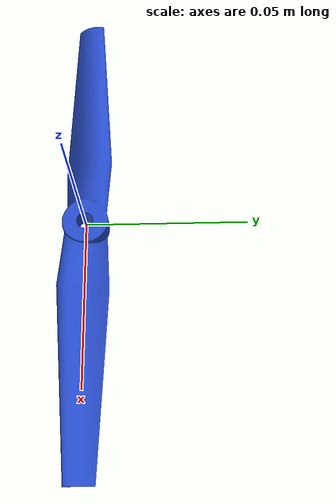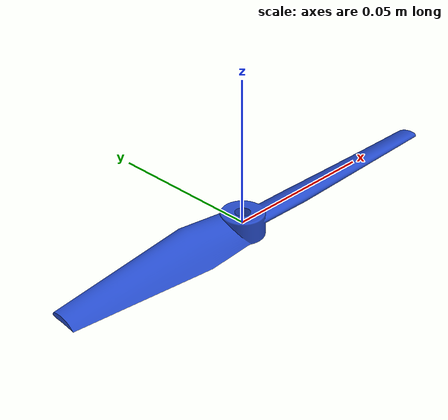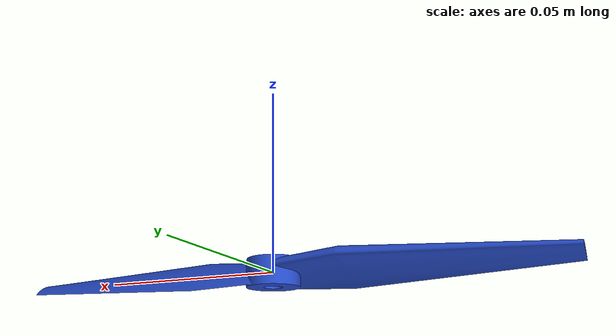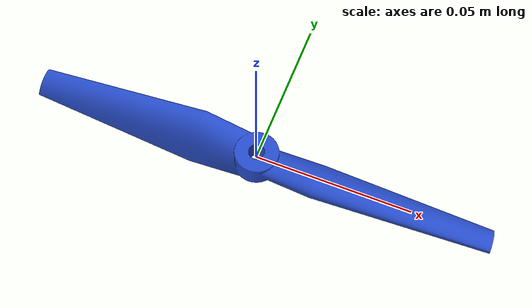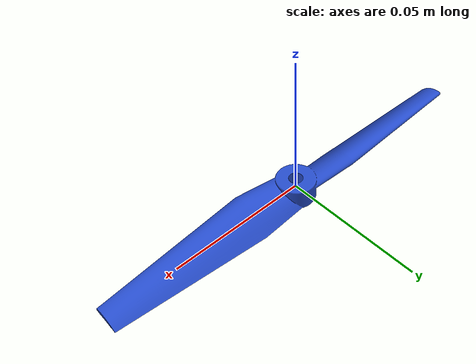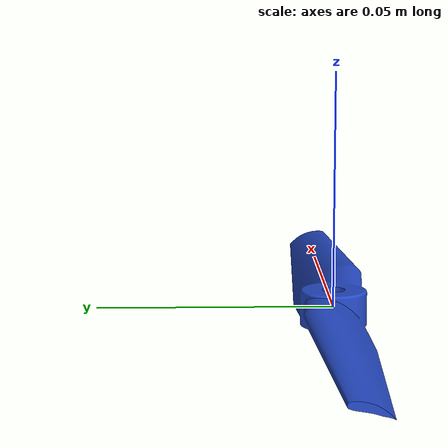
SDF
<?xml version="1.0" ?>

  <sdf version="1.5">
    <model name="usl_balanceTailsitter_prop">
      <link name='prop'>
      <pose>0.0 -0.0 0.0 0 -0 0</pose>
      <inertial>
        <pose>0 0 0 0 -0 0</pose>
        <mass>0.001</mass>
        <inertia>
          <ixx>0.001</ixx>
          <ixy>0</ixy>
          <ixz>0</ixz>
          <iyy>0.001</iyy>
          <iyz>0</iyz>
          <izz>0.001</izz>
        </inertia>
      </inertial>
      <collision name='prop_collision'>
        <pose>0 0 0 0 -0 0</pose>
        <geometry>
          <mesh>
            <uri>model://usl_balanceTailsitter_prop/meshes/prop.STL</uri>
          </mesh>
        </geometry>
        <max_contacts>1</max_contacts>
      </collision>
      <visual name='prop_visual'>
        <pose>0 0 0 0 -0 0</pose>
        <geometry>
          <mesh>
            <uri>model://usl_balanceTailsitter_prop/meshes/prop.STL</uri>
          </mesh>
        </geometry>
        <material>
          <script>
            <name>Gazebo/Blue</name>
            <uri>__default__</uri>
          </script>
        </material>
      </visual>
      <gravity>1</gravity>
      <velocity_decay />
      <self_collide>0</self_collide>
    </link>
  </model>
</sdf>
